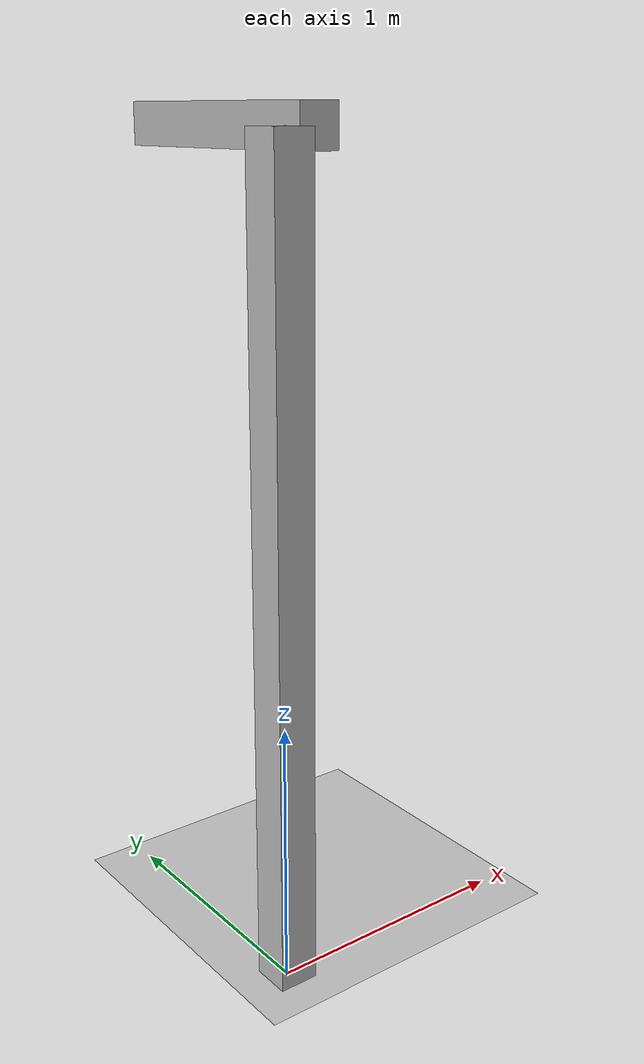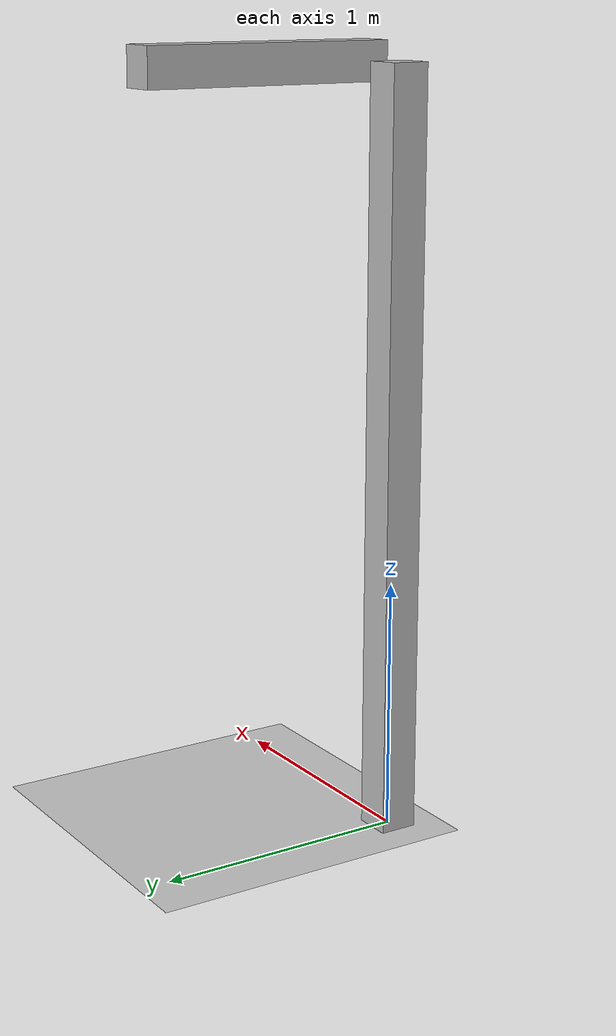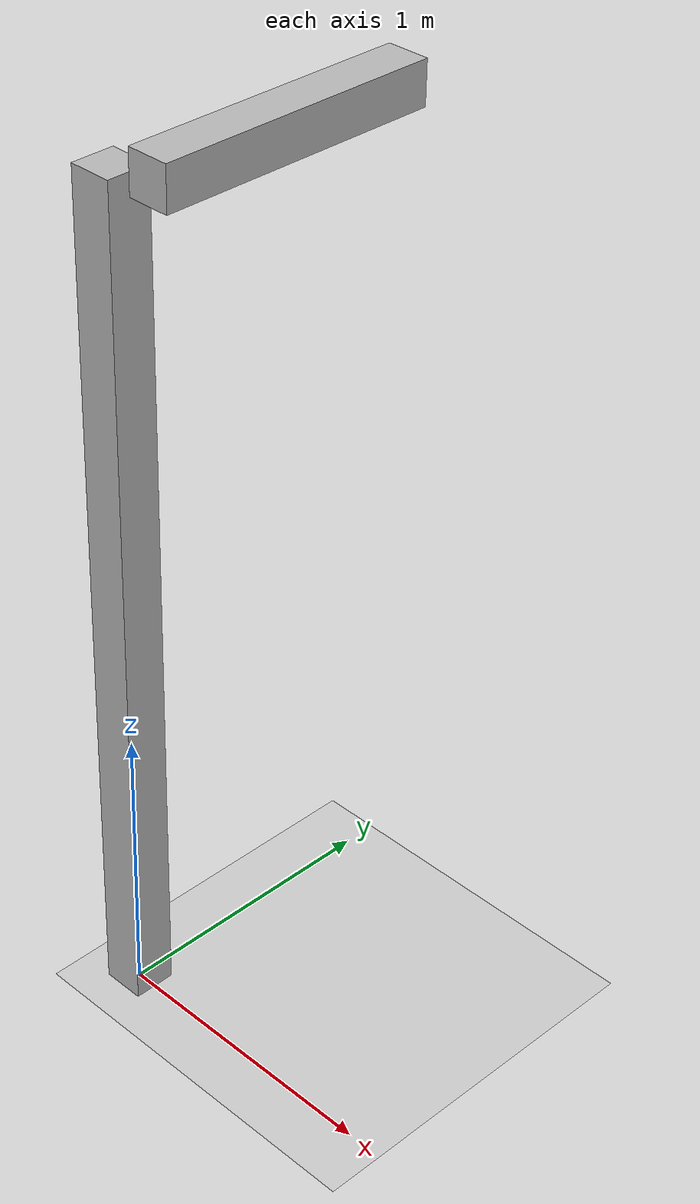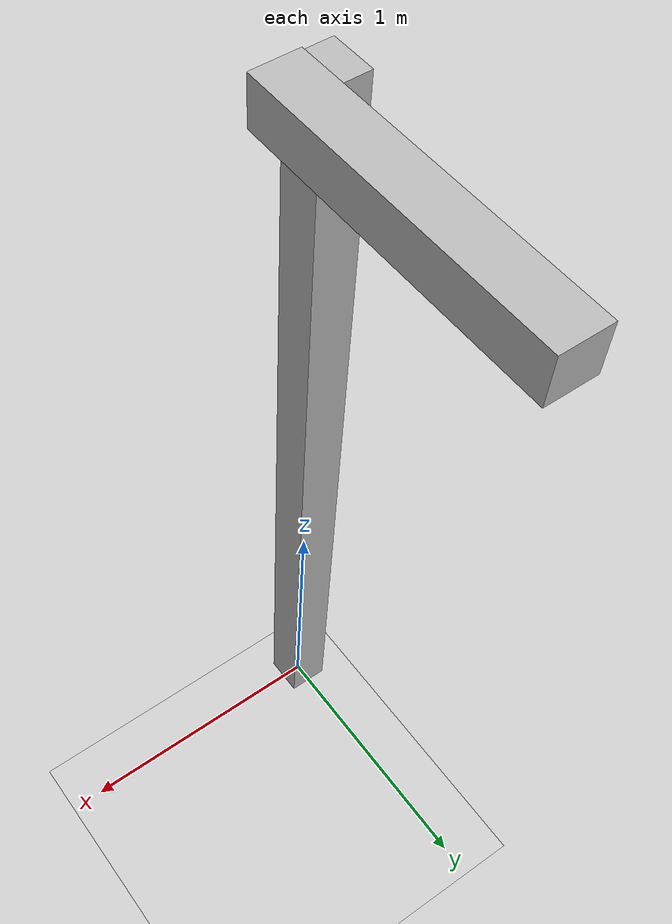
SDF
<?xml version="1.0"?>

<sdf version='1.11'>

  <world name="tutorial_controlboard">
    <physics type="ignored">
      <dart>
        <collision_detector>dart</collision_detector>
      </dart>
    </physics>
    <plugin
      filename="gz-sim-physics-system"
      name="gz::sim::systems::Physics">
      <engine>
        <filename>gz-physics-dartsim-plugin</filename>
      </engine>
    </plugin>
    <plugin
      filename="gz-sim-user-commands-system"
      name="gz::sim::systems::UserCommands">
    </plugin>
    <plugin
      filename="gz-sim-sensors-system"
      name="gz::sim::systems::Sensors">
    </plugin>
    <plugin
      filename="gz-sim-scene-broadcaster-system"
      name="gz::sim::systems::SceneBroadcaster">
    </plugin>
    <light type="directional" name="sun">
      <cast_shadows>true</cast_shadows>
      <pose>0 0 10 0 0 0</pose>
      <diffuse>0.8 0.8 0.8 1</diffuse>
      <specular>0.2 0.2 0.2 1</specular>
      <attenuation>
        <range>1000</range>
        <constant>0.9</constant>
        <linear>0.01</linear>
        <quadratic>0.001</quadratic>
      </attenuation>
      <direction>-0.5 0.1 -0.9</direction>
    </light>

    <model name="ground_plane">
      <static>true</static>
      <link name="link">
        <collision name="collision">
          <geometry>
            <plane>
              <normal>0 0 1</normal>
              <size>100 100</size>
            </plane>
          </geometry>
        </collision>
        <visual name="visual">
          <geometry>
            <plane>
              <normal>0 0 1</normal>
              <size>100 100</size>
            </plane>
          </geometry>
          <material>
            <ambient>0.8 0.8 0.8 1</ambient>
            <diffuse>0.8 0.8 0.8 1</diffuse>
            <specular>0.8 0.8 0.8 1</specular>
          </material>
        </visual>
      </link>
    </model>

    <model name="triple_pendulum">
      <joint name="fixed_base" type="fixed">
        <parent>world</parent>
        <child>base_link</child>
      </joint>
      <link name='base_link'>
        <inertial>
          <pose>0 0 0 0 0 0</pose>
          <density>8000</density>
        </inertial>
        <collision name='base_link_fixed_joint_lump__base_collision'>
          <pose>0 0 1.5 0 0 0</pose>
          <geometry>
            <box>
              <size>0.15 0.15 3.0</size>
            </box>
          </geometry>
        </collision>
        <visual name='base_link_fixed_joint_lump__base_visual'>
          <pose>0 0 1.5 0 0 0</pose>
          <geometry>
            <box>
              <size>0.15 0.15 3.0</size>
            </box>
          </geometry>
        </visual>
      </link>
      <joint name='joint1' type='revolute'>
        <pose relative_to='base_link'>0.15 0 3.0 -1.5708 0 0</pose>
        <parent>base_link</parent>
        <child>link1</child>
        <axis>
          <xyz>1 0 0</xyz>
          <dynamics>
            <damping>0.0</damping>
            <spring_reference>0</spring_reference>
            <spring_stiffness>0.0</spring_stiffness>
          </dynamics>
        </axis>
      </joint>
      <link name='link1'>
        <pose relative_to='joint1'>0 0 0 0 0 0</pose>
        <self_collide>0</self_collide>
        <inertial>
          <pose>0 0 0.5 0 0 0</pose>
          <density>8000</density>
        </inertial>
        <collision name='link1_collision'>
          <pose>0 0 0.5 0 0 0</pose>
          <geometry>
            <box>
              <size>0.15 0.15 1</size>
            </box>
          </geometry>
        </collision>
        <visual name='link1_visual'>
          <pose>0 0 0.5 0 0 0</pose>
          <geometry>
            <box>
              <size>0.15 0.15 1</size>
            </box>
          </geometry>
        </visual>
      </link>

      <plugin name="gzyarp::ControlBoard" filename="gz-sim-yarp-controlboard-system">
        <yarpConfigurationFile>
          model://conf/gazebo_controlboard_multiple_instances.ini
        </yarpConfigurationFile>
        <initialConfiguration>0.0</initialConfiguration>
      </plugin>
    </model>

  </world>
</sdf>
